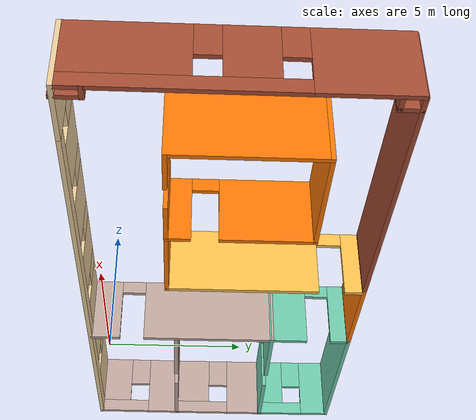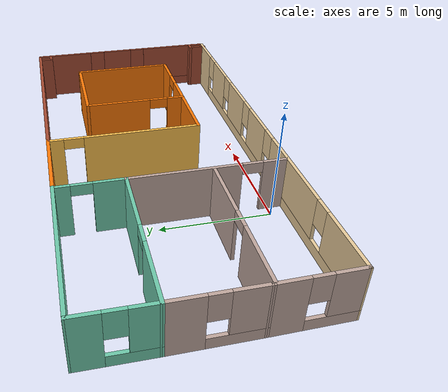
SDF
<?xml version='1.0'?>
<sdf version='1.6'>
  <model name='Some_Building'>
    <pose frame=''>3.86883 4.20191 0 0 -0 0</pose>
    <link name='Wall_13'>
      <pose frame=''>3.76972 -1.9787 0 0 -0 0</pose>
      <visual name='Wall_13_Visual_0'>
        <pose frame=''>-1.25808 0 1.25 0 -0 0</pose>
        <geometry>
          <box>
            <size>4.73385 0.15 2.5</size>
          </box>
        </geometry>
        <material>
          <script>
            <uri>file://media/materials/scripts/gazebo.material</uri>
            <name>Gazebo/Grey</name>
          </script>
          <ambient>0.996078 0.47451 0.0196078 1</ambient>
        </material>
        <meta>
          <layer>0</layer>
        </meta>
      </visual>
      <collision name='Wall_13_Collision_0'>
        <geometry>
          <box>
            <size>4.73385 0.15 2.5</size>
          </box>
        </geometry>
        <pose frame=''>-1.25808 0 1.25 0 -0 0</pose>
      </collision>
      <visual name='Wall_13_Visual_1'>
        <pose frame=''>2.81692 0 1.25 0 -0 0</pose>
        <geometry>
          <box>
            <size>1.61615 0.15 2.5</size>
          </box>
        </geometry>
        <material>
          <script>
            <uri>file://media/materials/scripts/gazebo.material</uri>
            <name>Gazebo/Grey</name>
          </script>
          <ambient>0.996078 0.47451 0.0196078 1</ambient>
        </material>
        <meta>
          <layer>0</layer>
        </meta>
      </visual>
      <collision name='Wall_13_Collision_1'>
        <geometry>
          <box>
            <size>1.61615 0.15 2.5</size>
          </box>
        </geometry>
        <pose frame=''>2.81692 0 1.25 0 -0 0</pose>
      </collision>
      <visual name='Wall_13_Visual_2'>
        <pose frame=''>1.55885 0 2.25 0 -0 0</pose>
        <geometry>
          <box>
            <size>0.9 0.15 0.5</size>
          </box>
        </geometry>
        <material>
          <script>
            <uri>file://media/materials/scripts/gazebo.material</uri>
            <name>Gazebo/Grey</name>
          </script>
          <ambient>0.996078 0.47451 0.0196078 1</ambient>
        </material>
        <meta>
          <layer>0</layer>
        </meta>
      </visual>
      <collision name='Wall_13_Collision_2'>
        <geometry>
          <box>
            <size>0.9 0.15 0.5</size>
          </box>
        </geometry>
        <pose frame=''>1.55885 0 2.25 0 -0 0</pose>
      </collision>
    </link>
    <link name='Wall_14'>
      <collision name='Wall_14_Collision'>
        <geometry>
          <box>
            <size>5 0.15 2.5</size>
          </box>
        </geometry>
        <pose frame=''>0 0 1.25 0 -0 0</pose>
      </collision>
      <visual name='Wall_14_Visual'>
        <pose frame=''>0 0 1.25 0 -0 0</pose>
        <geometry>
          <box>
            <size>5 0.15 2.5</size>
          </box>
        </geometry>
        <material>
          <script>
            <uri>file://media/materials/scripts/gazebo.material</uri>
            <name>Gazebo/Grey</name>
          </script>
          <ambient>0.996078 0.47451 0.0196078 1</ambient>
        </material>
        <meta>
          <layer>0</layer>
        </meta>
      </visual>
      <pose frame=''>7.31972 0.446304 0 0 -0 1.5708</pose>
    </link>
    <link name='Wall_15'>
      <collision name='Wall_15_Collision'>
        <geometry>
          <box>
            <size>4.25 0.15 2.5</size>
          </box>
        </geometry>
        <pose frame=''>0 0 1.25 0 -0 0</pose>
      </collision>
      <visual name='Wall_15_Visual'>
        <pose frame=''>0 0 1.25 0 -0 0</pose>
        <geometry>
          <box>
            <size>4.25 0.15 2.5</size>
          </box>
        </geometry>
        <material>
          <script>
            <uri>file://media/materials/scripts/gazebo.material</uri>
            <name>Gazebo/Grey</name>
          </script>
          <ambient>0.996078 0.47451 0.0196078 1</ambient>
        </material>
        <meta>
          <layer>0</layer>
        </meta>
      </visual>
      <pose frame=''>5.26972 2.8713 0 0 -0 3.14159</pose>
    </link>
    <link name='Wall_16'>
      <pose frame=''>3.21972 0.446304 0 0 0 -1.5708</pose>
      <visual name='Wall_16_Visual_0'>
        <pose frame=''>-0.891713 0 1.25 0 -0 0</pose>
        <geometry>
          <box>
            <size>3.21657 0.15 2.5</size>
          </box>
        </geometry>
        <material>
          <script>
            <uri>file://media/materials/scripts/gazebo.material</uri>
            <name>Gazebo/Grey</name>
          </script>
          <ambient>0.996078 0.47451 0.0196078 1</ambient>
        </material>
        <meta>
          <layer>0</layer>
        </meta>
      </visual>
      <collision name='Wall_16_Collision_0'>
        <geometry>
          <box>
            <size>3.21657 0.15 2.5</size>
          </box>
        </geometry>
        <pose frame=''>-0.891713 0 1.25 0 -0 0</pose>
      </collision>
      <visual name='Wall_16_Visual_1'>
        <pose frame=''>2.05829 0 1.25 0 -0 0</pose>
        <geometry>
          <box>
            <size>0.883427 0.15 2.5</size>
          </box>
        </geometry>
        <material>
          <script>
            <uri>file://media/materials/scripts/gazebo.material</uri>
            <name>Gazebo/Grey</name>
          </script>
          <ambient>0.996078 0.47451 0.0196078 1</ambient>
        </material>
        <meta>
          <layer>0</layer>
        </meta>
      </visual>
      <collision name='Wall_16_Collision_1'>
        <geometry>
          <box>
            <size>0.883427 0.15 2.5</size>
          </box>
        </geometry>
        <pose frame=''>2.05829 0 1.25 0 -0 0</pose>
      </collision>
      <visual name='Wall_16_Visual_2'>
        <pose frame=''>1.16657 0 2.25 0 -0 0</pose>
        <geometry>
          <box>
            <size>0.9 0.15 0.5</size>
          </box>
        </geometry>
        <material>
          <script>
            <uri>file://media/materials/scripts/gazebo.material</uri>
            <name>Gazebo/Grey</name>
          </script>
          <ambient>0.996078 0.47451 0.0196078 1</ambient>
        </material>
        <meta>
          <layer>0</layer>
        </meta>
      </visual>
      <collision name='Wall_16_Collision_2'>
        <geometry>
          <box>
            <size>0.9 0.15 0.5</size>
          </box>
        </geometry>
        <pose frame=''>1.16657 0 2.25 0 -0 0</pose>
      </collision>
    </link>
    <link name='Wall_18'>
      <pose frame=''>-3.34038 -1.41375 0 0 0 -1.5708</pose>
      <visual name='Wall_18_Visual_0'>
        <pose frame=''>-1.01152 0 1.25 0 -0 0</pose>
        <geometry>
          <box>
            <size>4.99707 0.15 2.5</size>
          </box>
        </geometry>
        <material>
          <script>
            <uri>file://media/materials/scripts/gazebo.material</uri>
            <name>Gazebo/Grey</name>
          </script>
          <ambient>0.760784 0.662745 0.627451 1</ambient>
        </material>
        <meta>
          <layer>0</layer>
        </meta>
      </visual>
      <collision name='Wall_18_Collision_0'>
        <geometry>
          <box>
            <size>4.99707 0.15 2.5</size>
          </box>
        </geometry>
        <pose frame=''>-1.01152 0 1.25 0 -0 0</pose>
      </collision>
      <visual name='Wall_18_Visual_1'>
        <pose frame=''>2.94853 0 1.25 0 -0 0</pose>
        <geometry>
          <box>
            <size>1.12305 0.15 2.5</size>
          </box>
        </geometry>
        <material>
          <script>
            <uri>file://media/materials/scripts/gazebo.material</uri>
            <name>Gazebo/Grey</name>
          </script>
          <ambient>0.760784 0.662745 0.627451 1</ambient>
        </material>
        <meta>
          <layer>0</layer>
        </meta>
      </visual>
      <collision name='Wall_18_Collision_1'>
        <geometry>
          <box>
            <size>1.12305 0.15 2.5</size>
          </box>
        </geometry>
        <pose frame=''>2.94853 0 1.25 0 -0 0</pose>
      </collision>
      <visual name='Wall_18_Visual_2'>
        <pose frame=''>1.93701 0 2.25 0 -0 0</pose>
        <geometry>
          <box>
            <size>0.9 0.15 0.5</size>
          </box>
        </geometry>
        <material>
          <script>
            <uri>file://media/materials/scripts/gazebo.material</uri>
            <name>Gazebo/Grey</name>
          </script>
          <ambient>0.760784 0.662745 0.627451 1</ambient>
        </material>
        <meta>
          <layer>0</layer>
        </meta>
      </visual>
      <collision name='Wall_18_Collision_2'>
        <geometry>
          <box>
            <size>0.9 0.15 0.5</size>
          </box>
        </geometry>
        <pose frame=''>1.93701 0 2.25 0 -0 0</pose>
      </collision>
    </link>
    <link name='Wall_2'>
      <pose frame=''>9.94117 0.003093 0 0 0 -1.5708</pose>
      <visual name='Wall_2_Visual_0'>
        <pose frame=''>-3.49485 0 1.25 0 -0 0</pose>
        <geometry>
          <box>
            <size>3.0103 0.15 2.5</size>
          </box>
        </geometry>
        <material>
          <script>
            <uri>file://media/materials/scripts/gazebo.material</uri>
            <name>Gazebo/Bricks</name>
          </script>
          <ambient>1 1 1 1</ambient>
        </material>
        <meta>
          <layer>0</layer>
        </meta>
      </visual>
      <collision name='Wall_2_Collision_0'>
        <geometry>
          <box>
            <size>3.0103 0.15 2.5</size>
          </box>
        </geometry>
        <pose frame=''>-3.49485 0 1.25 0 -0 0</pose>
      </collision>
      <visual name='Wall_2_Visual_1'>
        <pose frame=''>1.50515 0 0.25 0 -0 0</pose>
        <geometry>
          <box>
            <size>6.9897 0.15 0.5</size>
          </box>
        </geometry>
        <material>
          <script>
            <uri>file://media/materials/scripts/gazebo.material</uri>
            <name>Gazebo/Bricks</name>
          </script>
          <ambient>1 1 1 1</ambient>
        </material>
        <meta>
          <layer>0</layer>
        </meta>
      </visual>
      <collision name='Wall_2_Collision_1'>
        <geometry>
          <box>
            <size>6.9897 0.15 0.5</size>
          </box>
        </geometry>
        <pose frame=''>1.50515 0 0.25 0 -0 0</pose>
      </collision>
      <visual name='Wall_2_Visual_2'>
        <pose frame=''>-0.382884 0 1.5 0 -0 0</pose>
        <geometry>
          <box>
            <size>1.61363 0.15 2</size>
          </box>
        </geometry>
        <material>
          <script>
            <uri>file://media/materials/scripts/gazebo.material</uri>
            <name>Gazebo/Bricks</name>
          </script>
          <ambient>1 1 1 1</ambient>
        </material>
        <meta>
          <layer>0</layer>
        </meta>
      </visual>
      <collision name='Wall_2_Collision_2'>
        <geometry>
          <box>
            <size>1.61363 0.15 2</size>
          </box>
        </geometry>
        <pose frame=''>-0.382884 0 1.5 0 -0 0</pose>
      </collision>
      <visual name='Wall_2_Visual_3'>
        <pose frame=''>3.11197 0 1.5 0 -0 0</pose>
        <geometry>
          <box>
            <size>3.77607 0.15 2</size>
          </box>
        </geometry>
        <material>
          <script>
            <uri>file://media/materials/scripts/gazebo.material</uri>
            <name>Gazebo/Bricks</name>
          </script>
          <ambient>1 1 1 1</ambient>
        </material>
        <meta>
          <layer>0</layer>
        </meta>
      </visual>
      <collision name='Wall_2_Collision_3'>
        <geometry>
          <box>
            <size>3.77607 0.15 2</size>
          </box>
        </geometry>
        <pose frame=''>3.11197 0 1.5 0 -0 0</pose>
      </collision>
      <visual name='Wall_2_Visual_4'>
        <pose frame=''>-1.5897 0 1.9 0 -0 0</pose>
        <geometry>
          <box>
            <size>0.8 0.15 1.2</size>
          </box>
        </geometry>
        <material>
          <script>
            <uri>file://media/materials/scripts/gazebo.material</uri>
            <name>Gazebo/Bricks</name>
          </script>
          <ambient>1 1 1 1</ambient>
        </material>
        <meta>
          <layer>0</layer>
        </meta>
      </visual>
      <collision name='Wall_2_Collision_4'>
        <geometry>
          <box>
            <size>0.8 0.15 1.2</size>
          </box>
        </geometry>
        <pose frame=''>-1.5897 0 1.9 0 -0 0</pose>
      </collision>
      <visual name='Wall_2_Visual_5'>
        <pose frame=''>0.823931 0 1.9 0 -0 0</pose>
        <geometry>
          <box>
            <size>0.8 0.15 1.2</size>
          </box>
        </geometry>
        <material>
          <script>
            <uri>file://media/materials/scripts/gazebo.material</uri>
            <name>Gazebo/Bricks</name>
          </script>
          <ambient>1 1 1 1</ambient>
        </material>
        <meta>
          <layer>0</layer>
        </meta>
      </visual>
      <collision name='Wall_2_Collision_5'>
        <geometry>
          <box>
            <size>0.8 0.15 1.2</size>
          </box>
        </geometry>
        <pose frame=''>0.823931 0 1.9 0 -0 0</pose>
      </collision>
    </link>
    <link name='Wall_23'>
      <pose frame=''>-6.65398 -1.65419 0 0 -0 3.14159</pose>
      <visual name='Wall_23_Visual_0'>
        <pose frame=''>-1.84756 0 1.25 0 -0 0</pose>
        <geometry>
          <box>
            <size>2.80488 0.15 2.5</size>
          </box>
        </geometry>
        <material>
          <script>
            <uri>file://media/materials/scripts/gazebo.material</uri>
            <name>Gazebo/Grey</name>
          </script>
          <ambient>0.760784 0.662745 0.627451 1</ambient>
        </material>
        <meta>
          <layer>0</layer>
        </meta>
      </visual>
      <collision name='Wall_23_Collision_0'>
        <geometry>
          <box>
            <size>2.80488 0.15 2.5</size>
          </box>
        </geometry>
        <pose frame=''>-1.84756 0 1.25 0 -0 0</pose>
      </collision>
      <visual name='Wall_23_Visual_1'>
        <pose frame=''>1.85244 0 1.25 0 -0 0</pose>
        <geometry>
          <box>
            <size>2.79512 0.15 2.5</size>
          </box>
        </geometry>
        <material>
          <script>
            <uri>file://media/materials/scripts/gazebo.material</uri>
            <name>Gazebo/Grey</name>
          </script>
          <ambient>0.760784 0.662745 0.627451 1</ambient>
        </material>
        <meta>
          <layer>0</layer>
        </meta>
      </visual>
      <collision name='Wall_23_Collision_1'>
        <geometry>
          <box>
            <size>2.79512 0.15 2.5</size>
          </box>
        </geometry>
        <pose frame=''>1.85244 0 1.25 0 -0 0</pose>
      </collision>
      <visual name='Wall_23_Visual_2'>
        <pose frame=''>0.004884 0 2.25 0 -0 0</pose>
        <geometry>
          <box>
            <size>0.9 0.15 0.5</size>
          </box>
        </geometry>
        <material>
          <script>
            <uri>file://media/materials/scripts/gazebo.material</uri>
            <name>Gazebo/Grey</name>
          </script>
          <ambient>0.760784 0.662745 0.627451 1</ambient>
        </material>
        <meta>
          <layer>0</layer>
        </meta>
      </visual>
      <collision name='Wall_23_Collision_2'>
        <geometry>
          <box>
            <size>0.9 0.15 0.5</size>
          </box>
        </geometry>
        <pose frame=''>0.004884 0 2.25 0 -0 0</pose>
      </collision>
    </link>
    <link name='Wall_27'>
      <collision name='Wall_27_Collision'>
        <geometry>
          <box>
            <size>6.75 0.15 2.5</size>
          </box>
        </geometry>
        <pose frame=''>0 0 1.25 0 -0 0</pose>
      </collision>
      <visual name='Wall_27_Visual'>
        <pose frame=''>0 0 1.25 0 -0 0</pose>
        <geometry>
          <box>
            <size>6.75 0.15 2.5</size>
          </box>
        </geometry>
        <material>
          <script>
            <uri>file://media/materials/scripts/gazebo.material</uri>
            <name>Gazebo/Grey</name>
          </script>
          <ambient>0.435294 0.796078 0.67451 1</ambient>
        </material>
        <meta>
          <layer>0</layer>
        </meta>
      </visual>
      <pose frame=''>-6.60883 4.96832 0 0 -0 0</pose>
    </link>
    <link name='Wall_28'>
      <collision name='Wall_28_Collision'>
        <geometry>
          <box>
            <size>3.75 0.15 2.5</size>
          </box>
        </geometry>
        <pose frame=''>0 0 1.25 0 -0 0</pose>
      </collision>
      <visual name='Wall_28_Visual'>
        <pose frame=''>0 0 1.25 0 -0 0</pose>
        <geometry>
          <box>
            <size>3.75 0.15 2.5</size>
          </box>
        </geometry>
        <material>
          <script>
            <uri>file://media/materials/scripts/gazebo.material</uri>
            <name>Gazebo/Grey</name>
          </script>
          <ambient>0.996078 0.47451 0.0196078 1</ambient>
        </material>
        <meta>
          <layer>0</layer>
        </meta>
      </visual>
      <pose frame=''>-1.50883 4.96832 0 0 -0 0</pose>
    </link>
    <link name='Wall_29'>
      <collision name='Wall_29_Collision'>
        <geometry>
          <box>
            <size>9.75 0.15 2.5</size>
          </box>
        </geometry>
        <pose frame=''>0 0 1.25 0 -0 0</pose>
      </collision>
      <visual name='Wall_29_Visual'>
        <pose frame=''>0 0 1.25 0 -0 0</pose>
        <geometry>
          <box>
            <size>9.75 0.15 2.5</size>
          </box>
        </geometry>
        <material>
          <script>
            <uri>file://media/materials/scripts/gazebo.material</uri>
            <name>Gazebo/Bricks</name>
          </script>
          <ambient>1 1 1 1</ambient>
        </material>
        <meta>
          <layer>0</layer>
        </meta>
      </visual>
      <pose frame=''>5.09117 4.96832 0 0 -0 0</pose>
    </link>
    <link name='Wall_3'>
      <pose frame=''>0.016175 -4.92191 0 0 -0 3.14159</pose>
      <visual name='Wall_3_Visual_0'>
        <pose frame=''>-8.91216 0 1.25 0 -0 0</pose>
        <geometry>
          <box>
            <size>2.17568 0.15 2.5</size>
          </box>
        </geometry>
        <material>
          <script>
            <uri>file://media/materials/scripts/gazebo.material</uri>
            <name>Gazebo/Grey</name>
          </script>
          <ambient>0.921569 0.807843 0.615686 1</ambient>
        </material>
        <meta>
          <layer>0</layer>
        </meta>
      </visual>
      <collision name='Wall_3_Collision_0'>
        <geometry>
          <box>
            <size>2.17568 0.15 2.5</size>
          </box>
        </geometry>
        <pose frame=''>-8.91216 0 1.25 0 -0 0</pose>
      </collision>
      <visual name='Wall_3_Visual_1'>
        <pose frame=''>1.08784 0 0.25 0 -0 0</pose>
        <geometry>
          <box>
            <size>17.8243 0.15 0.5</size>
          </box>
        </geometry>
        <material>
          <script>
            <uri>file://media/materials/scripts/gazebo.material</uri>
            <name>Gazebo/Grey</name>
          </script>
          <ambient>0.921569 0.807843 0.615686 1</ambient>
        </material>
        <meta>
          <layer>0</layer>
        </meta>
      </visual>
      <collision name='Wall_3_Collision_1'>
        <geometry>
          <box>
            <size>17.8243 0.15 0.5</size>
          </box>
        </geometry>
        <pose frame=''>1.08784 0 0.25 0 -0 0</pose>
      </collision>
      <visual name='Wall_3_Visual_2'>
        <pose frame=''>-6.01637 0 1.5 0 -0 0</pose>
        <geometry>
          <box>
            <size>2.0159 0.15 2</size>
          </box>
        </geometry>
        <material>
          <script>
            <uri>file://media/materials/scripts/gazebo.material</uri>
            <name>Gazebo/Grey</name>
          </script>
          <ambient>0.921569 0.807843 0.615686 1</ambient>
        </material>
        <meta>
          <layer>0</layer>
        </meta>
      </visual>
      <collision name='Wall_3_Collision_2'>
        <geometry>
          <box>
            <size>2.0159 0.15 2</size>
          </box>
        </geometry>
        <pose frame=''>-6.01637 0 1.5 0 -0 0</pose>
      </collision>
      <visual name='Wall_3_Visual_3'>
        <pose frame=''>-3.0999 0 1.5 0 -0 0</pose>
        <geometry>
          <box>
            <size>2.21704 0.15 2</size>
          </box>
        </geometry>
        <material>
          <script>
            <uri>file://media/materials/scripts/gazebo.material</uri>
            <name>Gazebo/Grey</name>
          </script>
          <ambient>0.921569 0.807843 0.615686 1</ambient>
        </material>
        <meta>
          <layer>0</layer>
        </meta>
      </visual>
      <collision name='Wall_3_Collision_3'>
        <geometry>
          <box>
            <size>2.21704 0.15 2</size>
          </box>
        </geometry>
        <pose frame=''>-3.0999 0 1.5 0 -0 0</pose>
      </collision>
      <visual name='Wall_3_Visual_4'>
        <pose frame=''>-0.153265 0 1.5 0 -0 0</pose>
        <geometry>
          <box>
            <size>2.07624 0.15 2</size>
          </box>
        </geometry>
        <material>
          <script>
            <uri>file://media/materials/scripts/gazebo.material</uri>
            <name>Gazebo/Grey</name>
          </script>
          <ambient>0.921569 0.807843 0.615686 1</ambient>
        </material>
        <meta>
          <layer>0</layer>
        </meta>
      </visual>
      <collision name='Wall_3_Collision_4'>
        <geometry>
          <box>
            <size>2.07624 0.15 2</size>
          </box>
        </geometry>
        <pose frame=''>-0.153265 0 1.5 0 -0 0</pose>
      </collision>
      <visual name='Wall_3_Visual_5'>
        <pose frame=''>3.97002 0 1.5 0 -0 0</pose>
        <geometry>
          <box>
            <size>4.57032 0.15 2</size>
          </box>
        </geometry>
        <material>
          <script>
            <uri>file://media/materials/scripts/gazebo.material</uri>
            <name>Gazebo/Grey</name>
          </script>
          <ambient>0.921569 0.807843 0.615686 1</ambient>
        </material>
        <meta>
          <layer>0</layer>
        </meta>
      </visual>
      <collision name='Wall_3_Collision_5'>
        <geometry>
          <box>
            <size>4.57032 0.15 2</size>
          </box>
        </geometry>
        <pose frame=''>3.97002 0 1.5 0 -0 0</pose>
      </collision>
      <visual name='Wall_3_Visual_6'>
        <pose frame=''>8.52759 0 1.5 0 -0 0</pose>
        <geometry>
          <box>
            <size>2.94482 0.15 2</size>
          </box>
        </geometry>
        <material>
          <script>
            <uri>file://media/materials/scripts/gazebo.material</uri>
            <name>Gazebo/Grey</name>
          </script>
          <ambient>0.921569 0.807843 0.615686 1</ambient>
        </material>
        <meta>
          <layer>0</layer>
        </meta>
      </visual>
      <collision name='Wall_3_Collision_6'>
        <geometry>
          <box>
            <size>2.94482 0.15 2</size>
          </box>
        </geometry>
        <pose frame=''>8.52759 0 1.5 0 -0 0</pose>
      </collision>
      <visual name='Wall_3_Visual_7'>
        <pose frame=''>-7.42432 0 1.9 0 -0 0</pose>
        <geometry>
          <box>
            <size>0.8 0.15 1.2</size>
          </box>
        </geometry>
        <material>
          <script>
            <uri>file://media/materials/scripts/gazebo.material</uri>
            <name>Gazebo/Grey</name>
          </script>
          <ambient>0.921569 0.807843 0.615686 1</ambient>
        </material>
        <meta>
          <layer>0</layer>
        </meta>
      </visual>
      <collision name='Wall_3_Collision_7'>
        <geometry>
          <box>
            <size>0.8 0.15 1.2</size>
          </box>
        </geometry>
        <pose frame=''>-7.42432 0 1.9 0 -0 0</pose>
      </collision>
      <visual name='Wall_3_Visual_8'>
        <pose frame=''>-4.60842 0 1.9 0 -0 0</pose>
        <geometry>
          <box>
            <size>0.8 0.15 1.2</size>
          </box>
        </geometry>
        <material>
          <script>
            <uri>file://media/materials/scripts/gazebo.material</uri>
            <name>Gazebo/Grey</name>
          </script>
          <ambient>0.921569 0.807843 0.615686 1</ambient>
        </material>
        <meta>
          <layer>0</layer>
        </meta>
      </visual>
      <collision name='Wall_3_Collision_8'>
        <geometry>
          <box>
            <size>0.8 0.15 1.2</size>
          </box>
        </geometry>
        <pose frame=''>-4.60842 0 1.9 0 -0 0</pose>
      </collision>
      <visual name='Wall_3_Visual_9'>
        <pose frame=''>-1.59139 0 1.9 0 -0 0</pose>
        <geometry>
          <box>
            <size>0.8 0.15 1.2</size>
          </box>
        </geometry>
        <material>
          <script>
            <uri>file://media/materials/scripts/gazebo.material</uri>
            <name>Gazebo/Grey</name>
          </script>
          <ambient>0.921569 0.807843 0.615686 1</ambient>
        </material>
        <meta>
          <layer>0</layer>
        </meta>
      </visual>
      <collision name='Wall_3_Collision_9'>
        <geometry>
          <box>
            <size>0.8 0.15 1.2</size>
          </box>
        </geometry>
        <pose frame=''>-1.59139 0 1.9 0 -0 0</pose>
      </collision>
      <visual name='Wall_3_Visual_10'>
        <pose frame=''>1.28486 0 1.9 0 -0 0</pose>
        <geometry>
          <box>
            <size>0.8 0.15 1.2</size>
          </box>
        </geometry>
        <material>
          <script>
            <uri>file://media/materials/scripts/gazebo.material</uri>
            <name>Gazebo/Grey</name>
          </script>
          <ambient>0.921569 0.807843 0.615686 1</ambient>
        </material>
        <meta>
          <layer>0</layer>
        </meta>
      </visual>
      <collision name='Wall_3_Collision_10'>
        <geometry>
          <box>
            <size>0.8 0.15 1.2</size>
          </box>
        </geometry>
        <pose frame=''>1.28486 0 1.9 0 -0 0</pose>
      </collision>
      <visual name='Wall_3_Visual_11'>
        <pose frame=''>6.65518 0 1.9 0 -0 0</pose>
        <geometry>
          <box>
            <size>0.8 0.15 1.2</size>
          </box>
        </geometry>
        <material>
          <script>
            <uri>file://media/materials/scripts/gazebo.material</uri>
            <name>Gazebo/Grey</name>
          </script>
          <ambient>0.921569 0.807843 0.615686 1</ambient>
        </material>
        <meta>
          <layer>0</layer>
        </meta>
      </visual>
      <collision name='Wall_3_Collision_11'>
        <geometry>
          <box>
            <size>0.8 0.15 1.2</size>
          </box>
        </geometry>
        <pose frame=''>6.65518 0 1.9 0 -0 0</pose>
      </collision>
    </link>
    <link name='Wall_31'>
      <pose frame=''>-9.9246 3.49345 0 0 0 -1.58149</pose>
      <visual name='Wall_31_Visual_0'>
        <pose frame=''>-0.962755 0 1.25 0 -0 0</pose>
        <geometry>
          <box>
            <size>1.1744 0.15 2.5</size>
          </box>
        </geometry>
        <material>
          <script>
            <uri>file://media/materials/scripts/gazebo.material</uri>
            <name>Gazebo/Grey</name>
          </script>
          <ambient>0.435294 0.796078 0.67451 1</ambient>
        </material>
        <meta>
          <layer>0</layer>
        </meta>
      </visual>
      <collision name='Wall_31_Collision_0'>
        <geometry>
          <box>
            <size>1.1744 0.15 2.5</size>
          </box>
        </geometry>
        <pose frame=''>-0.962755 0 1.25 0 -0 0</pose>
      </collision>
      <visual name='Wall_31_Visual_1'>
        <pose frame=''>0.587199 0 0.25 0 -0 0</pose>
        <geometry>
          <box>
            <size>1.92551 0.15 0.5</size>
          </box>
        </geometry>
        <material>
          <script>
            <uri>file://media/materials/scripts/gazebo.material</uri>
            <name>Gazebo/Grey</name>
          </script>
          <ambient>0.435294 0.796078 0.67451 1</ambient>
        </material>
        <meta>
          <layer>0</layer>
        </meta>
      </visual>
      <collision name='Wall_31_Collision_1'>
        <geometry>
          <box>
            <size>1.92551 0.15 0.5</size>
          </box>
        </geometry>
        <pose frame=''>0.587199 0 0.25 0 -0 0</pose>
      </collision>
      <visual name='Wall_31_Visual_2'>
        <pose frame=''>0.987199 0 1.5 0 -0 0</pose>
        <geometry>
          <box>
            <size>1.12551 0.15 2</size>
          </box>
        </geometry>
        <material>
          <script>
            <uri>file://media/materials/scripts/gazebo.material</uri>
            <name>Gazebo/Grey</name>
          </script>
          <ambient>0.435294 0.796078 0.67451 1</ambient>
        </material>
        <meta>
          <layer>0</layer>
        </meta>
      </visual>
      <collision name='Wall_31_Collision_2'>
        <geometry>
          <box>
            <size>1.12551 0.15 2</size>
          </box>
        </geometry>
        <pose frame=''>0.987199 0 1.5 0 -0 0</pose>
      </collision>
      <visual name='Wall_31_Visual_3'>
        <pose frame=''>0.024445 0 1.9 0 -0 0</pose>
        <geometry>
          <box>
            <size>0.8 0.15 1.2</size>
          </box>
        </geometry>
        <material>
          <script>
            <uri>file://media/materials/scripts/gazebo.material</uri>
            <name>Gazebo/Grey</name>
          </script>
          <ambient>0.435294 0.796078 0.67451 1</ambient>
        </material>
        <meta>
          <layer>0</layer>
        </meta>
      </visual>
      <collision name='Wall_31_Collision_3'>
        <geometry>
          <box>
            <size>0.8 0.15 1.2</size>
          </box>
        </geometry>
        <pose frame=''>0.024445 0 1.9 0 -0 0</pose>
      </collision>
    </link>
    <link name='Wall_35'>
      <pose frame=''>-9.94038 0.218581 0 0 0 -1.5708</pose>
      <visual name='Wall_35_Visual_0'>
        <pose frame=''>-1.11653 0 1.25 0 -0 0</pose>
        <geometry>
          <box>
            <size>1.51695 0.15 2.5</size>
          </box>
        </geometry>
        <material>
          <script>
            <uri>file://media/materials/scripts/gazebo.material</uri>
            <name>Gazebo/Grey</name>
          </script>
          <ambient>0.760784 0.662745 0.627451 1</ambient>
        </material>
        <meta>
          <layer>0</layer>
        </meta>
      </visual>
      <collision name='Wall_35_Collision_0'>
        <geometry>
          <box>
            <size>1.51695 0.15 2.5</size>
          </box>
        </geometry>
        <pose frame=''>-1.11653 0 1.25 0 -0 0</pose>
      </collision>
      <visual name='Wall_35_Visual_1'>
        <pose frame=''>0.758474 0 0.25 0 -0 0</pose>
        <geometry>
          <box>
            <size>2.23305 0.15 0.5</size>
          </box>
        </geometry>
        <material>
          <script>
            <uri>file://media/materials/scripts/gazebo.material</uri>
            <name>Gazebo/Grey</name>
          </script>
          <ambient>0.760784 0.662745 0.627451 1</ambient>
        </material>
        <meta>
          <layer>0</layer>
        </meta>
      </visual>
      <collision name='Wall_35_Collision_1'>
        <geometry>
          <box>
            <size>2.23305 0.15 0.5</size>
          </box>
        </geometry>
        <pose frame=''>0.758474 0 0.25 0 -0 0</pose>
      </collision>
      <visual name='Wall_35_Visual_2'>
        <pose frame=''>1.15847 0 1.5 0 -0 0</pose>
        <geometry>
          <box>
            <size>1.43305 0.15 2</size>
          </box>
        </geometry>
        <material>
          <script>
            <uri>file://media/materials/scripts/gazebo.material</uri>
            <name>Gazebo/Grey</name>
          </script>
          <ambient>0.760784 0.662745 0.627451 1</ambient>
        </material>
        <meta>
          <layer>0</layer>
        </meta>
      </visual>
      <collision name='Wall_35_Collision_2'>
        <geometry>
          <box>
            <size>1.43305 0.15 2</size>
          </box>
        </geometry>
        <pose frame=''>1.15847 0 1.5 0 -0 0</pose>
      </collision>
      <visual name='Wall_35_Visual_3'>
        <pose frame=''>0.041948 0 1.9 0 -0 0</pose>
        <geometry>
          <box>
            <size>0.8 0.15 1.2</size>
          </box>
        </geometry>
        <material>
          <script>
            <uri>file://media/materials/scripts/gazebo.material</uri>
            <name>Gazebo/Grey</name>
          </script>
          <ambient>0.760784 0.662745 0.627451 1</ambient>
        </material>
        <meta>
          <layer>0</layer>
        </meta>
      </visual>
      <collision name='Wall_35_Collision_3'>
        <geometry>
          <box>
            <size>0.8 0.15 1.2</size>
          </box>
        </geometry>
        <pose frame=''>0.041948 0 1.9 0 -0 0</pose>
      </collision>
    </link>
    <link name='Wall_39'>
      <pose frame=''>-9.9246 -3.25166 0 0 0 -1.56135</pose>
      <visual name='Wall_39_Visual_0'>
        <pose frame=''>-1.0531 0 1.25 0 -0 0</pose>
        <geometry>
          <box>
            <size>1.38444 0.15 2.5</size>
          </box>
        </geometry>
        <material>
          <script>
            <uri>file://media/materials/scripts/gazebo.material</uri>
            <name>Gazebo/Grey</name>
          </script>
          <ambient>0.760784 0.662745 0.627451 1</ambient>
        </material>
        <meta>
          <layer>0</layer>
        </meta>
      </visual>
      <collision name='Wall_39_Collision_0'>
        <geometry>
          <box>
            <size>1.38444 0.15 2.5</size>
          </box>
        </geometry>
        <pose frame=''>-1.0531 0 1.25 0 -0 0</pose>
      </collision>
      <visual name='Wall_39_Visual_1'>
        <pose frame=''>0.69222 0 0.25 0 -0 0</pose>
        <geometry>
          <box>
            <size>2.1062 0.15 0.5</size>
          </box>
        </geometry>
        <material>
          <script>
            <uri>file://media/materials/scripts/gazebo.material</uri>
            <name>Gazebo/Grey</name>
          </script>
          <ambient>0.760784 0.662745 0.627451 1</ambient>
        </material>
        <meta>
          <layer>0</layer>
        </meta>
      </visual>
      <collision name='Wall_39_Collision_1'>
        <geometry>
          <box>
            <size>2.1062 0.15 0.5</size>
          </box>
        </geometry>
        <pose frame=''>0.69222 0 0.25 0 -0 0</pose>
      </collision>
      <visual name='Wall_39_Visual_2'>
        <pose frame=''>1.09222 0 1.5 0 -0 0</pose>
        <geometry>
          <box>
            <size>1.3062 0.15 2</size>
          </box>
        </geometry>
        <material>
          <script>
            <uri>file://media/materials/scripts/gazebo.material</uri>
            <name>Gazebo/Grey</name>
          </script>
          <ambient>0.760784 0.662745 0.627451 1</ambient>
        </material>
        <meta>
          <layer>0</layer>
        </meta>
      </visual>
      <collision name='Wall_39_Collision_2'>
        <geometry>
          <box>
            <size>1.3062 0.15 2</size>
          </box>
        </geometry>
        <pose frame=''>1.09222 0 1.5 0 -0 0</pose>
      </collision>
      <visual name='Wall_39_Visual_3'>
        <pose frame=''>0.039122 0 1.9 0 -0 0</pose>
        <geometry>
          <box>
            <size>0.8 0.15 1.2</size>
          </box>
        </geometry>
        <material>
          <script>
            <uri>file://media/materials/scripts/gazebo.material</uri>
            <name>Gazebo/Grey</name>
          </script>
          <ambient>0.760784 0.662745 0.627451 1</ambient>
        </material>
        <meta>
          <layer>0</layer>
        </meta>
      </visual>
      <collision name='Wall_39_Collision_3'>
        <geometry>
          <box>
            <size>0.8 0.15 1.2</size>
          </box>
        </geometry>
        <pose frame=''>0.039122 0 1.9 0 -0 0</pose>
      </collision>
    </link>
    <link name='Wall_41'>
      <collision name='Wall_41_Collision'>
        <geometry>
          <box>
            <size>0.75 0.15 2.5</size>
          </box>
        </geometry>
        <pose frame=''>0 0 1.25 0 -0 0</pose>
      </collision>
      <visual name='Wall_41_Visual'>
        <pose frame=''>0 0 1.25 0 -0 0</pose>
        <geometry>
          <box>
            <size>0.75 0.15 2.5</size>
          </box>
        </geometry>
        <material>
          <script>
            <uri>file://media/materials/scripts/gazebo.material</uri>
            <name>Gazebo/Bricks</name>
          </script>
          <ambient>1 1 1 1</ambient>
        </material>
        <meta>
          <layer>0</layer>
        </meta>
      </visual>
      <pose frame=''>9.46317 4.64808 0 0 0 -1.5708</pose>
    </link>
    <link name='Wall_42'>
      <collision name='Wall_42_Collision'>
        <geometry>
          <box>
            <size>0.5 0.15 2.5</size>
          </box>
        </geometry>
        <pose frame=''>0 0 1.25 0 -0 0</pose>
      </collision>
      <visual name='Wall_42_Visual'>
        <pose frame=''>0 0 1.25 0 -0 0</pose>
        <geometry>
          <box>
            <size>0.5 0.15 2.5</size>
          </box>
        </geometry>
        <material>
          <script>
            <uri>file://media/materials/scripts/gazebo.material</uri>
            <name>Gazebo/Bricks</name>
          </script>
          <ambient>1 1 1 1</ambient>
        </material>
        <meta>
          <layer>0</layer>
        </meta>
      </visual>
      <pose frame=''>9.63817 4.34808 0 0 -0 0</pose>
    </link>
    <link name='Wall_45'>
      <collision name='Wall_45_Collision'>
        <geometry>
          <box>
            <size>0.5 0.15 2.5</size>
          </box>
        </geometry>
        <pose frame=''>0 0 1.25 0 -0 0</pose>
      </collision>
      <visual name='Wall_45_Visual'>
        <pose frame=''>0 0 1.25 0 -0 0</pose>
        <geometry>
          <box>
            <size>0.5 0.15 2.5</size>
          </box>
        </geometry>
        <material>
          <script>
            <uri>file://media/materials/scripts/gazebo.material</uri>
            <name>Gazebo/Bricks</name>
          </script>
          <ambient>1 1 1 1</ambient>
        </material>
        <meta>
          <layer>0</layer>
        </meta>
      </visual>
      <pose frame=''>9.75078 -4.11912 0 0 -0 3.14159</pose>
    </link>
    <link name='Wall_46'>
      <collision name='Wall_46_Collision'>
        <geometry>
          <box>
            <size>1 0.15 2.5</size>
          </box>
        </geometry>
        <pose frame=''>0 0 1.25 0 -0 0</pose>
      </collision>
      <visual name='Wall_46_Visual'>
        <pose frame=''>0 0 1.25 0 -0 0</pose>
        <geometry>
          <box>
            <size>1 0.15 2.5</size>
          </box>
        </geometry>
        <material>
          <script>
            <uri>file://media/materials/scripts/gazebo.material</uri>
            <name>Gazebo/Bricks</name>
          </script>
          <ambient>1 1 1 1</ambient>
        </material>
        <meta>
          <layer>0</layer>
        </meta>
      </visual>
      <pose frame=''>9.57578 -4.54412 0 0 0 -1.5708</pose>
    </link>
    <link name='Wall_5'>
      <pose frame=''>-3.34038 3.4463 0 0 0 -1.5708</pose>
      <visual name='Wall_5_Visual_0'>
        <pose frame=''>-1.16455 0 1.25 0 -0 0</pose>
        <geometry>
          <box>
            <size>0.670906 0.15 2.5</size>
          </box>
        </geometry>
        <material>
          <script>
            <uri>file://media/materials/scripts/gazebo.material</uri>
            <name>Gazebo/Grey</name>
          </script>
          <ambient>0.435294 0.796078 0.67451 1</ambient>
        </material>
        <meta>
          <layer>0</layer>
        </meta>
      </visual>
      <collision name='Wall_5_Collision_0'>
        <geometry>
          <box>
            <size>0.670906 0.15 2.5</size>
          </box>
        </geometry>
        <pose frame=''>-1.16455 0 1.25 0 -0 0</pose>
      </collision>
      <visual name='Wall_5_Visual_1'>
        <pose frame=''>0.785453 0 1.25 0 -0 0</pose>
        <geometry>
          <box>
            <size>1.42909 0.15 2.5</size>
          </box>
        </geometry>
        <material>
          <script>
            <uri>file://media/materials/scripts/gazebo.material</uri>
            <name>Gazebo/Grey</name>
          </script>
          <ambient>0.435294 0.796078 0.67451 1</ambient>
        </material>
        <meta>
          <layer>0</layer>
        </meta>
      </visual>
      <collision name='Wall_5_Collision_1'>
        <geometry>
          <box>
            <size>1.42909 0.15 2.5</size>
          </box>
        </geometry>
        <pose frame=''>0.785453 0 1.25 0 -0 0</pose>
      </collision>
      <visual name='Wall_5_Visual_2'>
        <pose frame=''>-0.379094 0 2.25 0 -0 0</pose>
        <geometry>
          <box>
            <size>0.9 0.15 0.5</size>
          </box>
        </geometry>
        <material>
          <script>
            <uri>file://media/materials/scripts/gazebo.material</uri>
            <name>Gazebo/Grey</name>
          </script>
          <ambient>0.435294 0.796078 0.67451 1</ambient>
        </material>
        <meta>
          <layer>0</layer>
        </meta>
      </visual>
      <collision name='Wall_5_Collision_2'>
        <geometry>
          <box>
            <size>0.9 0.15 0.5</size>
          </box>
        </geometry>
        <pose frame=''>-0.379094 0 2.25 0 -0 0</pose>
      </collision>
    </link>
    <link name='Wall_6'>
      <pose frame=''>-6.64038 2.01994 0 0 0 -3.14118</pose>
      <visual name='Wall_6_Visual_0'>
        <pose frame=''>-1.88302 0 1.25 0 -0 0</pose>
        <geometry>
          <box>
            <size>2.98397 0.15 2.5</size>
          </box>
        </geometry>
        <material>
          <script>
            <uri>file://media/materials/scripts/gazebo.material</uri>
            <name>Gazebo/Grey</name>
          </script>
          <ambient>0.435294 0.796078 0.67451 1</ambient>
        </material>
        <meta>
          <layer>0</layer>
        </meta>
      </visual>
      <collision name='Wall_6_Collision_0'>
        <geometry>
          <box>
            <size>2.98397 0.15 2.5</size>
          </box>
        </geometry>
        <pose frame=''>-1.88302 0 1.25 0 -0 0</pose>
      </collision>
      <visual name='Wall_6_Visual_1'>
        <pose frame=''>1.94198 0 1.25 0 -0 0</pose>
        <geometry>
          <box>
            <size>2.86603 0.15 2.5</size>
          </box>
        </geometry>
        <material>
          <script>
            <uri>file://media/materials/scripts/gazebo.material</uri>
            <name>Gazebo/Grey</name>
          </script>
          <ambient>0.435294 0.796078 0.67451 1</ambient>
        </material>
        <meta>
          <layer>0</layer>
        </meta>
      </visual>
      <collision name='Wall_6_Collision_1'>
        <geometry>
          <box>
            <size>2.86603 0.15 2.5</size>
          </box>
        </geometry>
        <pose frame=''>1.94198 0 1.25 0 -0 0</pose>
      </collision>
      <visual name='Wall_6_Visual_2'>
        <pose frame=''>0.058966 0 2.25 0 -0 0</pose>
        <geometry>
          <box>
            <size>0.9 0.15 0.5</size>
          </box>
        </geometry>
        <material>
          <script>
            <uri>file://media/materials/scripts/gazebo.material</uri>
            <name>Gazebo/Grey</name>
          </script>
          <ambient>0.435294 0.796078 0.67451 1</ambient>
        </material>
        <meta>
          <layer>0</layer>
        </meta>
      </visual>
      <collision name='Wall_6_Collision_2'>
        <geometry>
          <box>
            <size>0.9 0.15 0.5</size>
          </box>
        </geometry>
        <pose frame=''>0.058966 0 2.25 0 -0 0</pose>
      </collision>
    </link>
    <link name='Wall_9'>
      <pose frame=''>0.219724 1.4463 0 0 0 -1.5708</pose>
      <visual name='Wall_9_Visual_0'>
        <pose frame=''>-3.16455 0 1.25 0 -0 0</pose>
        <geometry>
          <box>
            <size>0.670906 0.15 2.5</size>
          </box>
        </geometry>
        <material>
          <script>
            <uri>file://media/materials/scripts/gazebo.material</uri>
            <name>Gazebo/Grey</name>
          </script>
          <ambient>1 0.764706 0.305882 1</ambient>
        </material>
        <meta>
          <layer>0</layer>
        </meta>
      </visual>
      <collision name='Wall_9_Collision_0'>
        <geometry>
          <box>
            <size>0.670906 0.15 2.5</size>
          </box>
        </geometry>
        <pose frame=''>-3.16455 0 1.25 0 -0 0</pose>
      </collision>
      <visual name='Wall_9_Visual_1'>
        <pose frame=''>0.785453 0 1.25 0 -0 0</pose>
        <geometry>
          <box>
            <size>5.42909 0.15 2.5</size>
          </box>
        </geometry>
        <material>
          <script>
            <uri>file://media/materials/scripts/gazebo.material</uri>
            <name>Gazebo/Grey</name>
          </script>
          <ambient>1 0.764706 0.305882 1</ambient>
        </material>
        <meta>
          <layer>0</layer>
        </meta>
      </visual>
      <collision name='Wall_9_Collision_1'>
        <geometry>
          <box>
            <size>5.42909 0.15 2.5</size>
          </box>
        </geometry>
        <pose frame=''>0.785453 0 1.25 0 -0 0</pose>
      </collision>
      <visual name='Wall_9_Visual_2'>
        <pose frame=''>-2.37909 0 2.25 0 -0 0</pose>
        <geometry>
          <box>
            <size>0.9 0.15 0.5</size>
          </box>
        </geometry>
        <material>
          <script>
            <uri>file://media/materials/scripts/gazebo.material</uri>
            <name>Gazebo/Grey</name>
          </script>
          <ambient>1 0.764706 0.305882 1</ambient>
        </material>
        <meta>
          <layer>0</layer>
        </meta>
      </visual>
      <collision name='Wall_9_Collision_2'>
        <geometry>
          <box>
            <size>0.9 0.15 0.5</size>
          </box>
        </geometry>
        <pose frame=''>-2.37909 0 2.25 0 -0 0</pose>
      </collision>
    </link>
    <static>1</static>
  </model>
</sdf>
